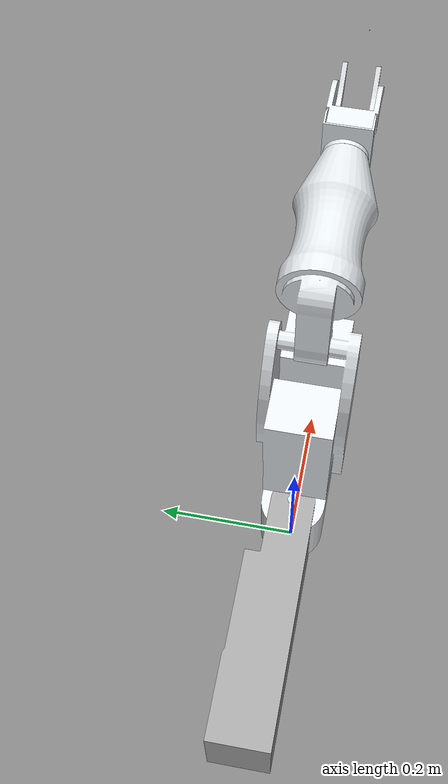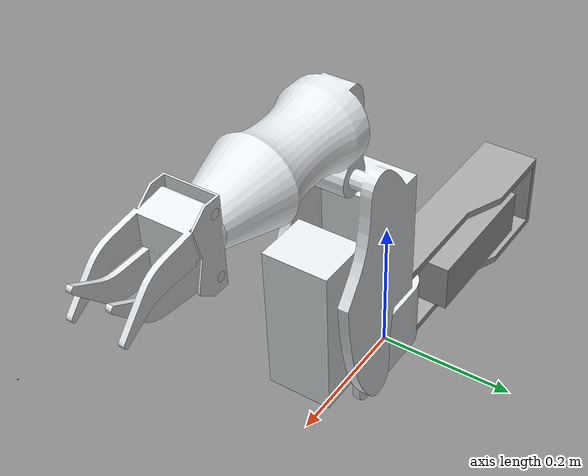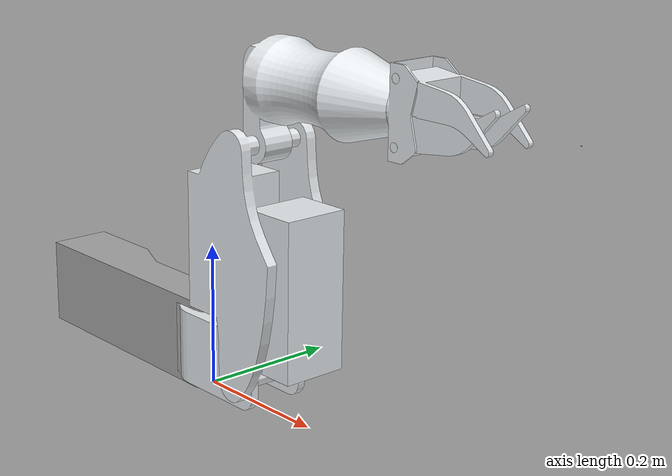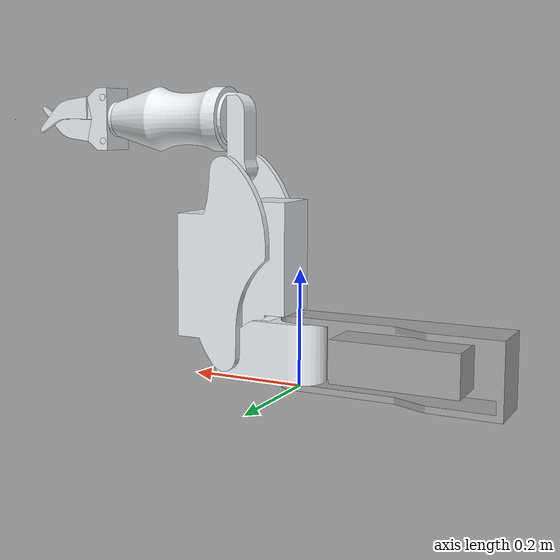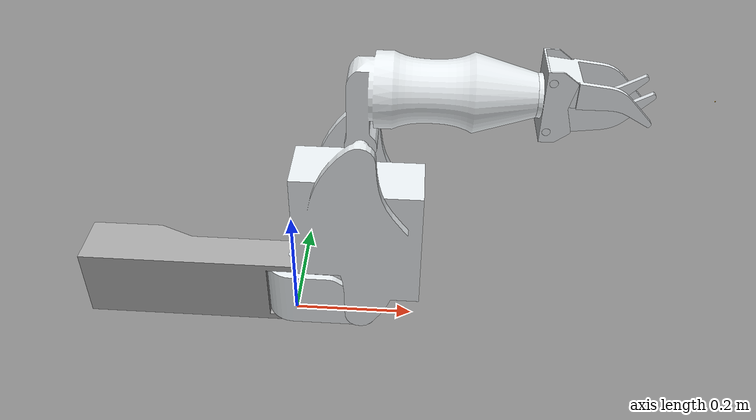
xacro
<?xml version="1.0" encoding="utf-8"?>
<robot
  name="brazo_titan" xmlns:xacro="http://www.ros.org/wiki/xacro">
  <xacro:include filename="$(find bt_description)/urdf/brazo_titan.gazebo" />

  <link name="world"/>
  <link
    name="base_link">
    <inertial>
      <origin
        xyz="-0.19298 0.0075955 0.0625"
        rpy="0 0 0" />
      <mass
        value="6.1853" />
      <inertia
        ixx="0.012184"
        ixy="0.00090223"
        ixz="1.3835E-17"
        iyy="0.056236"
        iyz="3.9457E-19"
        izz="0.052383" />
    </inertial>
    <visual>
      <origin
        xyz="0 0 0"
        rpy="0 0 0" />
      <geometry>
        <mesh
          filename="package://bt_description/meshes/base_link.dae" />
      </geometry>
      <material
        name="">
        <color
          rgba="0.64706 0.64706 0.64706 1" />
      </material>
    </visual>
    <collision>
      <origin
        xyz="0 0 0"
        rpy="0 0 0" />
      <geometry>
        <mesh
          filename="package://bt_description/meshes/base_link.dae" />
      </geometry>
    </collision>
  </link>
  <joint
    name="fixed" type="fixed">
    <parent
      link="world"/>
    <child
      link="base_link"/>
  </joint>
  <link
    name="link_1">
    <inertial>
      <origin
        xyz="0.024982 -5.4947E-19 0.049118"
        rpy="0 0 0" />
      <mass
        value="1.4127" />
      <inertia
        ixx="0.0031914"
        ixy="2.1342E-19"
        ixz="0.00026697"
        iyy="0.0047943"
        iyz="3.3862E-20"
        izz="0.0048415" />
    </inertial>
    <visual>
      <origin
        xyz="0 0 0"
        rpy="0 0 0" />
      <geometry>
        <mesh
          filename="package://bt_description/meshes/link_1.dae" />
      </geometry>
      <material
        name="">
        <color
          rgba="0.89804 0.91765 0.92941 1" />
      </material>
    </visual>
    <collision>
      <origin
        xyz="0 0 0"
        rpy="0 0 0" />
      <geometry>
        <mesh
          filename="package://bt_description/meshes/link_1.dae" />
      </geometry>
    </collision>
  </link>
  <joint
    name="joint_1"
    type="revolute">
    <origin
      xyz="0 0 0.0112"
      rpy="0 0 0" />
    <parent
      link="base_link" />
    <child
      link="link_1" />
    <axis
      xyz="0 0 1" />
    <limit
      lower="-0.559"
      upper="1.6755"
      effort="1000"
      velocity="10" />
  </joint>

  <transmission name="trans_1">
    <type>transmission_interface/SimpleTransmission</type>
    <actuator name="motor_1">
      <mechanicalReduction>1</mechanicalReduction>
    </actuator>
    <joint name="joint_1">
      <hardwareInterface>hardware_interface/EffortJointInterface</hardwareInterface>
    </joint>
  </transmission>

  <link
    name="link_2">
    <inertial>
      <origin
        xyz="-0.0010762 -0.15432 3.5974E-07"
        rpy="0 0 0" />
      <mass
        value="10.827" />
      <inertia
        ixx="0.071505"
        ixy="-0.011714"
        ixz="-2.2654E-08"
        iyy="0.052068"
        iyz="-6.3036E-07"
        izz="0.09606" />
    </inertial>
    <visual>
      <origin
        xyz="0 0 0"
        rpy="0 0 0" />
      <geometry>
        <mesh
          filename="package://bt_description/meshes/link_2.dae" />
      </geometry>
      <material
        name="">
        <color
          rgba="0.89804 0.91765 0.92941 1" />
      </material>
    </visual>
    <collision>
      <origin
        xyz="0 0 0"
        rpy="0 0 0" />
      <geometry>
        <mesh
          filename="package://bt_description/meshes/link_2.dae" />
      </geometry>
    </collision>
  </link>
  <joint
    name="joint_2"
    type="revolute">
    <origin
      xyz="0.11544 0 0.03787"
      rpy="-1.5708 0 0" />
    <parent
      link="link_1" />
    <child
      link="link_2" />
    <axis
      xyz="0 0 1" />
    <limit
      lower="0"
      upper="1.5708"
      effort="1000"
      velocity="10" />
  </joint>

  <transmission name="trans_2">
    <type>transmission_interface/SimpleTransmission</type>
    <actuator name="motor_2">
      <mechanicalReduction>1</mechanicalReduction>
    </actuator>
    <joint name="joint_2">
      <hardwareInterface>hardware_interface/EffortJointInterface</hardwareInterface>
    </joint>
  </transmission>

  <link
    name="link_3">
    <inertial>
      <origin
        xyz="0.0817310104576687 0.105548084762186 -2.15780091702272E-19"
        rpy="0 0 0" />
      <mass
        value="5.00252289603041" />
      <inertia
        ixx="0.028518009278965"
        ixy="-0.0020223288525813"
        ixz="4.88907697870278E-19"
        iyy="0.00695567946184861"
        iyz="1.4370815545716E-19"
        izz="0.0299838082009635" />
    </inertial>
    <visual>
      <origin
        xyz="0 0 0"
        rpy="0 0 0" />
      <geometry>
        <mesh
          filename="package://bt_description/meshes/link_3.dae" />
      </geometry>
      <material
        name="">
        <color
          rgba="0.898039215686275 0.917647058823529 0.929411764705882 1" />
      </material>
    </visual>
    <collision>
      <origin
        xyz="0 0 0"
        rpy="0 0 0" />
      <geometry>
        <mesh
          filename="package://bt_description/meshes/link_3.dae" />
      </geometry>
    </collision>
  </link>
  <joint
    name="joint_3"
    type="revolute">
    <origin
      xyz="0 -0.31584 0"
      rpy="0 0 -1.5708" />
    <parent
      link="link_2" />
    <child
      link="link_3" />
    <axis
      xyz="0 0 1" />
    <limit
      lower="-1.0472"
      upper="0.9948"
      effort="1000"
      velocity="10" />
  </joint>

  <transmission name="trans_3">
    <type>transmission_interface/SimpleTransmission</type>
    <actuator name="motor_3">
      <mechanicalReduction>1</mechanicalReduction>
    </actuator>
    <joint name="joint_3">
      <hardwareInterface>hardware_interface/EffortJointInterface</hardwareInterface>
    </joint>
  </transmission>

  <link
    name="link_4">
    <inertial>
      <origin
        xyz="5.55111512312578E-17 2.35227269212332E-17 0.0122671947156228"
        rpy="0 0 0" />
      <mass
        value="1.56825521057727" />
      <inertia
        ixx="0.00104946856895735"
        ixy="-1.60135374033666E-20"
        ixz="-5.72328435517316E-19"
        iyy="0.00131914968783349"
        iyz="-3.04755803489809E-19"
        izz="0.00194007626413219" />
    </inertial>
    <visual>
      <origin
        xyz="0 0 0"
        rpy="0 0 0" />
      <geometry>
        <mesh
          filename="package://bt_description/meshes/link_4.dae" />
      </geometry>
      <material
        name="">
        <color
          rgba="0.898039215686275 0.917647058823529 0.929411764705882 1" />
      </material>
    </visual>
    <collision>
      <origin
        xyz="0 0 0"
        rpy="0 0 0" />
      <geometry>
        <mesh
          filename="package://bt_description/meshes/link_4.dae" />
      </geometry>
    </collision>
  </link>
  <joint
    name="joint_4"
    type="continuous">
    <origin
      xyz="0.0855 0.24429 0"
      rpy="-1.5708 0 0" />
    <parent
      link="link_3" />
    <child
      link="link_4" />
    <axis
      xyz="0 0 1" />
    <limit
      lower="-12.56"
      upper="12.56"
      effort="10000"
      velocity="10" />
  </joint>

  <transmission name="trans_4">
    <type>transmission_interface/SimpleTransmission</type>
    <actuator name="motor_4">
      <mechanicalReduction>1</mechanicalReduction>
    </actuator>
    <joint name="joint_4">
      <hardwareInterface>hardware_interface/EffortJointInterface</hardwareInterface>
    </joint>
  </transmission>

  <link
    name="pinza_ext">
    <inertial>
      <origin
        xyz="0.034158 -0.019093 -2.3821E-17"
        rpy="0 0 0" />
      <mass
        value="0.41047" />
      <inertia
        ixx="0.00027959"
        ixy="7.9948E-05"
        ixz="1.1208E-20"
        iyy="0.00064223"
        iyz="5.7896E-21"
        izz="0.00050574" />
    </inertial>
    <visual>
      <origin
        xyz="0 0 0"
        rpy="0 0 0" />
      <geometry>
        <mesh
          filename="package://bt_description/meshes/pinza_ext.dae" />
      </geometry>
      <material
        name="">
        <color
          rgba="0.89804 0.91765 0.92941 1" />
      </material>
    </visual>
    <collision>
      <origin
        xyz="0 0 0"
        rpy="0 0 0" />
      <geometry>
        <mesh
          filename="package://bt_description/meshes/pinza_ext.dae" />
      </geometry>
    </collision>
  </link>
  <joint
    name="joint_pext"
    type="revolute">
    <origin
      xyz="0.03875 0 0.016"
      rpy="-1.5708 -1.5708 0" />
    <parent
      link="link_4" />
    <child
      link="pinza_ext" />
    <axis
      xyz="0 0 1" />
    <limit
      lower="0"
      upper="0.7854"
      effort="100"
      velocity="10" />
    <dynamics friction="0.2"/>
  </joint>

  <transmission name="trans_pext">
    <type>transmission_interface/SimpleTransmission</type>
    <actuator name="motor_pext">
      <mechanicalReduction>1</mechanicalReduction>
    </actuator>
    <joint name="joint_pext">
      <hardwareInterface>hardware_interface/EffortJointInterface</hardwareInterface>
    </joint>
  </transmission>

  <link
    name="pinza_int">
    <inertial>
      <origin
        xyz="0.035616 -0.01923 -1.0611E-19"
        rpy="0 0 0" />
      <mass
        value="0.37023" />
      <inertia
        ixx="0.00019226"
        ixy="7.9138E-05"
        ixz="-5.2467E-21"
        iyy="0.00054598"
        iyz="-4.9631E-21"
        izz="0.00048593" />
    </inertial>
    <visual>
      <origin
        xyz="0 0 0"
        rpy="0 0 0" />
      <geometry>
        <mesh
          filename="package://bt_description/meshes/pinza_int.dae" />
      </geometry>
      <material
        name="">
        <color
          rgba="0.89804 0.91765 0.92941 1" />
      </material>
    </visual>
    <collision>
      <origin
        xyz="0 0 0"
        rpy="0 0 0" />
      <geometry>
        <mesh
          filename="package://bt_description/meshes/pinza_int.dae" />
      </geometry>
    </collision>
  </link>
  <joint
    name="joint_pint"
    type="revolute">
    <origin
      xyz="-0.03875 0 0.016"
      rpy="1.5708 -1.5708 0" />
    <parent
      link="link_4" />
    <child
      link="pinza_int" />
    <axis
      xyz="0 0 1" />
    <limit
      lower="0"
      upper="0.7854"
      effort="100"
      velocity="10" />
    <dynamics friction="0.2"/>
  </joint>

  <transmission name="trans_pint">
    <type>transmission_interface/SimpleTransmission</type>
    <actuator name="motor_pint">
      <mechanicalReduction>1</mechanicalReduction>
    </actuator>
    <joint name="joint_pint">
      <hardwareInterface>hardware_interface/EffortJointInterface</hardwareInterface>
    </joint>
  </transmission>

  <link
    name="payload">
    <inertial>
      <origin
        xyz="0 0 0"
        rpy="0 0 1.5708" />
      <mass
        value="0.00001" />
      <inertia
        ixx="0"
        ixy="0"
        ixz="0"
        iyy="0"
        iyz="0"
        izz="0" />
    </inertial>
    <visual>
      <origin
        xyz="0 0 0"
        rpy="0 0 0" />
      <geometry>
        <box size="0.001 0.001 0.001" />
      </geometry>
    </visual>
  </link>
  <joint
    name="payload"
    type="revolute">
    <origin
      xyz="0 0 0.24524"
      rpy="0 0 0" />
    <parent
      link="link_4" />
    <child
      link="payload" />
    <axis
      xyz="0 0 1" />
    <limit
      lower="0.000001"
      upper="0.00001"
      effort="100"
      velocity="10" />
  </joint>

</robot>
